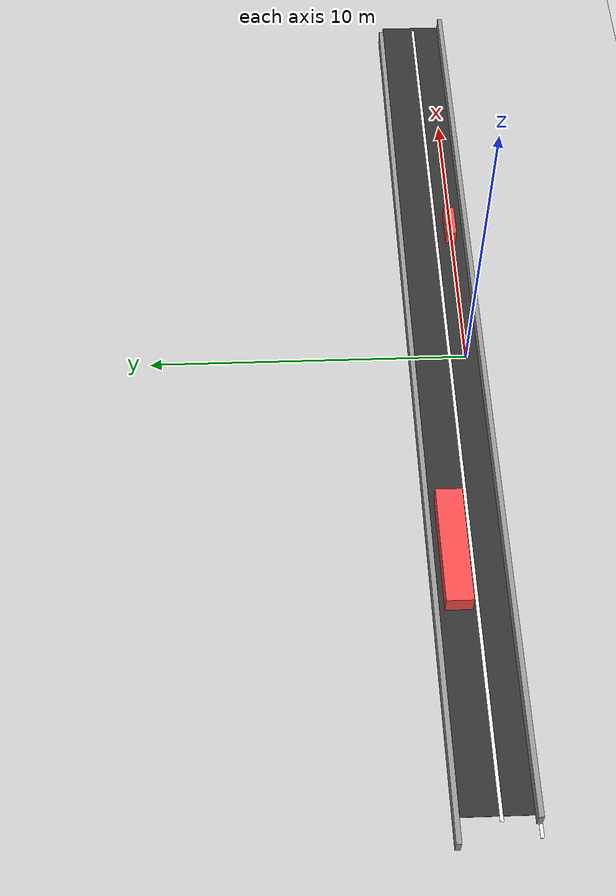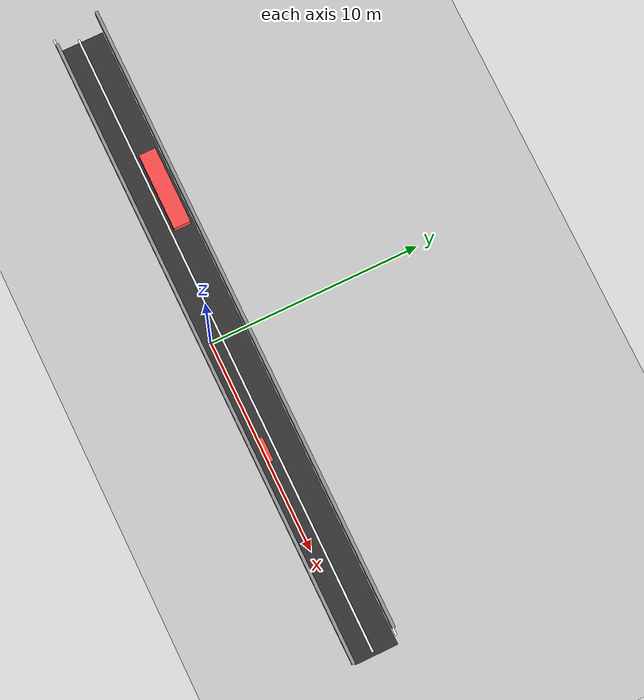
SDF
<sdf version="1.7">
 <world name="default">
  <model name="ground_plane">
   <static>1</static>
   <link name="link">
    <collision name="collision">
     <geometry><plane><normal>0 0 1</normal><size>100 100</size></plane></geometry>
     <surface>
      <contact><collide_bitmask>65535</collide_bitmask></contact>
      <friction><ode><mu>100</mu><mu2>50</mu2></ode></friction>
     </surface>
    </collision>
    <visual name="visual">
     <cast_shadows>0</cast_shadows>
     <geometry><plane><normal>0 0 1</normal><size>100 100</size></plane></geometry>
     <material>
      <script><uri>file://media/materials/scripts/gazebo.material</uri><name>Gazebo/Grey</name></script>
     </material>
    </visual>
   </link>
  </model>
  <light name="sun" type="directional">
   <pose>0 0 10 0 -0 0</pose>
   <diffuse>0.8 0.8 0.8 1</diffuse>
   <specular>0.2 0.2 0.2 1</specular>
   <attenuation>
    <range>1000</range>
    <constant>0.9</constant>
    <linear>0.01</linear>
    <quadratic>0.001</quadratic>
   </attenuation>
   <direction>-0.5 0.1 -0.9</direction>
   <spot><inner_angle>0</inner_angle><outer_angle>0</outer_angle><falloff>0</falloff></spot>
  </light>
  <scene><shadows>0</shadows><ambient>0.4 0.4 0.4 1</ambient><background>0.7 0.7 0.7 1</background></scene>
  <physics type="ode">
   <real_time_update_rate>1000</real_time_update_rate>
   <max_step_size>0.001</max_step_size>
   <real_time_factor>1</real_time_factor>
   <ode>
    <solver>
     <type>quick</type>
     <iters>150</iters>
     <precon_iters>0</precon_iters>
     <sor>1.4</sor>
     <use_dynamic_moi_rescaling>1</use_dynamic_moi_rescaling>
    </solver>
    <constraints>
     <cfm>1e-05</cfm>
     <erp>0.2</erp>
     <contact_max_correcting_vel>2000</contact_max_correcting_vel>
     <contact_surface_layer>0.01</contact_surface_layer>
    </constraints>
   </ode>
  </physics>
  <model name="divider">
   <static>1</static>
   <pose>0 0.525742 0.02 0 -0 0</pose>
   <link name="link">
    <collision name="collision"><geometry><box><size>30 0.1 0.01</size></box></geometry></collision>
    <visual name="visual">
     <geometry><box><size>30 0.1 0.01</size></box></geometry>
     <material><ambient>1 1 1 1</ambient><diffuse>1 1 1 1</diffuse><specular>1 1 1 1</specular></material>
    </visual>
   </link>
  </model>
  <model name="right_edge">
   <static>1</static>
   <pose>-0.212304 1.73757 0.02 0 -0 0</pose>
   <link name="link">
    <visual name="visual">
     <geometry><box><size>30 0.1 0.01</size></box></geometry>
     <material><ambient>1 1 1 1</ambient><diffuse>1 1 1 1</diffuse><specular>1 1 1 1</specular></material>
    </visual>
   </link>
  </model>
  <model name="left_edge">
   <static>1</static>
   <pose>-0.463476 -0.479548 0.02 0 -0 0</pose>
   <link name="link">
    <visual name="visual">
     <geometry><box><size>30 0.1 0.01</size></box></geometry>
     <material><ambient>1 1 1 1</ambient><diffuse>1 1 1 1</diffuse><specular>1 1 1 1</specular></material>
    </visual>
   </link>
  </model>
  <model name="obstacle1">
   <velocity>0.5 0 0 0 0 0</velocity>
   <pose>-7.02139 1.07414 0.300484 0 -0 0</pose>
   <link name="link">
    <collision name="collision"><geometry><box><size>3.65103 0.8 0.627495</size></box></geometry></collision>
    <visual name="visual">
     <geometry><box><size>3.65103 0.8 0.627495</size></box></geometry>
     <material>
      <ambient>1 0.3 0.3 1</ambient>
      <diffuse>1 0.3 0.3 1</diffuse>
      <specular>1 0.3 0.3 1</specular>
     </material>
    </visual>
   </link>
  </model>
  <model name="obstacle3">
   <pose>5.27394 0.063486 0.262353 0 -0 0</pose>
   <link name="link">
    <collision name="collision"><geometry><box><size>1.11587 0.335252 0.517782</size></box></geometry></collision>
    <visual name="visual">
     <geometry><box><size>1.11587 0.335252 0.517782</size></box></geometry>
     <material>
      <ambient>1 0.3 0.3 1</ambient>
      <diffuse>1 0.3 0.3 1</diffuse>
      <specular>1 0.3 0.3 1</specular>
     </material>
    </visual>
   </link>
  </model>
  <gravity>0 0 -9.8</gravity>
  <magnetic_field>6e-06 2.3e-05 -4.2e-05</magnetic_field>
  <atmosphere type="adiabatic"/>
  <audio><device>default</device></audio>
  <spherical_coordinates>
   <surface_model>EARTH_WGS84</surface_model>
   <latitude_deg>0</latitude_deg>
   <longitude_deg>0</longitude_deg>
   <elevation>0</elevation>
   <heading_deg>0</heading_deg>
  </spherical_coordinates>
  <model name="road_n">
   <pose>0 0.0163 0 0 -0 0</pose>
   <link name="Wall_5">
    <collision name="Wall_5_Collision">
     <geometry><box><size>30.15 0.15 0.5</size></box></geometry>
     <pose>0 0 0.25 0 -0 0</pose>
    </collision>
    <visual name="Wall_5_Visual">
     <pose>0 0 0.25 0 -0 0</pose>
     <geometry><box><size>30.15 0.15 0.5</size></box></geometry>
     <material>
      <script><uri>file://media/materials/scripts/gazebo.material</uri><name>Gazebo/Grey</name></script>
      <ambient>1 1 1 1</ambient>
     </material>
     <meta><layer>0</layer></meta>
    </visual>
    <pose>0 -0.4625 0 0 -0 0</pose>
   </link>
   <static>1</static>
  </model>
  <model name="road_n_clone">
   <pose>-0.624496 2.22089 0 0 -0 0</pose>
   <link name="Wall_5">
    <collision name="Wall_5_Collision">
     <geometry><box><size>30.15 0.15 0.5</size></box></geometry>
     <pose>0 0 0.25 0 -0 0</pose>
    </collision>
    <visual name="Wall_5_Visual">
     <pose>0 0 0.25 0 -0 0</pose>
     <geometry><box><size>30.15 0.15 0.5</size></box></geometry>
     <material>
      <script><uri>file://media/materials/scripts/gazebo.material</uri><name>Gazebo/Grey</name></script>
      <ambient>1 1 1 1</ambient>
     </material>
     <meta><layer>0</layer></meta>
    </visual>
    <pose>0 -0.4625 0 0 -0 0</pose>
   </link>
   <static>1</static>
  </model>
  <model name="road">
   <link name="link">
    <pose>-0.163601 -1.01548 0 0 -0 0</pose>
    <inertial>
     <inertia><ixx>0</ixx><ixy>0</ixy><ixz>0</ixz><iyy>0</iyy><iyz>0</iyz><izz>0</izz></inertia>
     <mass>0</mass>
    </inertial>
    <visual name="visual">
     <geometry><box><size>30 2.02042 0.02</size></box></geometry>
     <material>
      <ambient>0.2 0.2 0.2 1</ambient>
      <diffuse>0.2 0.2 0.2 1</diffuse>
      <specular>0.2 0.2 0.2 1</specular>
      <shader type="pixel"/>
      <script><name>ModelPreview_1::link::visual_MATERIAL_</name><uri>__default__</uri></script>
     </material>
    </visual>
    <collision name="collision">
     <geometry><box><size>30 2.02042 0.02</size></box></geometry>
     <surface>
      <friction>
       <ode><mu>1</mu><mu2>1</mu2><fdir1>0 0 0</fdir1><slip1>0</slip1><slip2>0</slip2></ode>
       <torsional>
        <coefficient>1</coefficient>
        <patch_radius>0</patch_radius>
        <surface_radius>0</surface_radius>
        <use_patch_radius>1</use_patch_radius>
        <ode><slip>0</slip></ode>
       </torsional>
      </friction>
      <bounce><restitution_coefficient>0</restitution_coefficient><threshold>1e+06</threshold></bounce>
      <contact>
       <collide_without_contact>0</collide_without_contact>
       <collide_without_contact_bitmask>1</collide_without_contact_bitmask>
       <collide_bitmask>1</collide_bitmask>
       <ode>
        <soft_cfm>0</soft_cfm>
        <soft_erp>0.2</soft_erp>
        <kp>1e+13</kp>
        <kd>1</kd>
        <max_vel>0.01</max_vel>
        <min_depth>0</min_depth>
       </ode>
       <bullet>
        <split_impulse>1</split_impulse>
        <split_impulse_penetration_threshold>-0.01</split_impulse_penetration_threshold>
        <soft_cfm>0</soft_cfm>
        <soft_erp>0.2</soft_erp>
        <kp>1e+13</kp>
        <kd>1</kd>
       </bullet>
      </contact>
     </surface>
    </collision>
   </link>
   <static>1</static>
   <pose>0.322568 1.63928 0.01 0 -0 0</pose>
  </model>
 </world>
</sdf>
